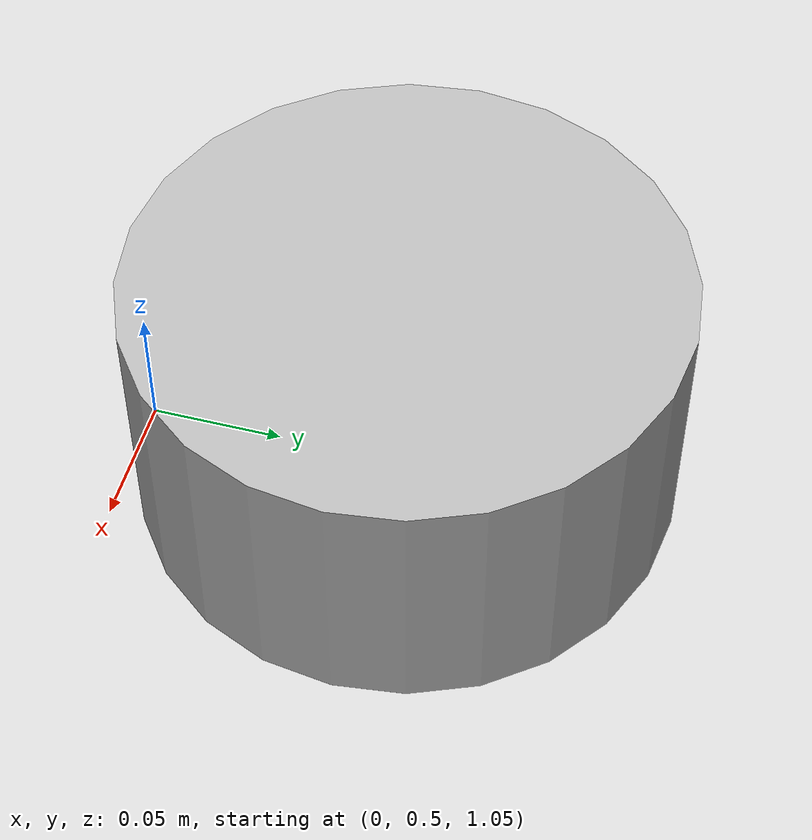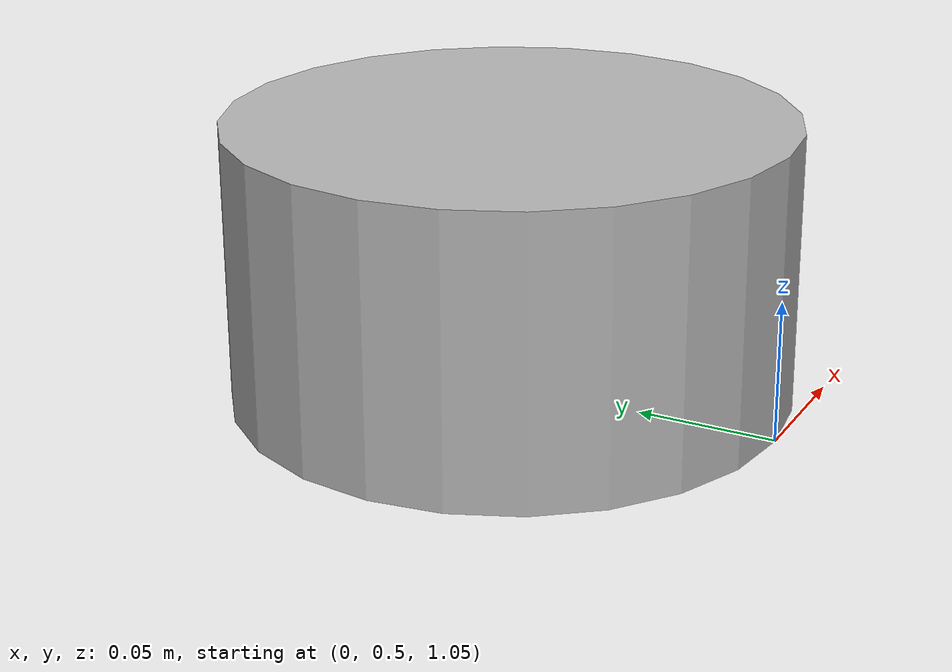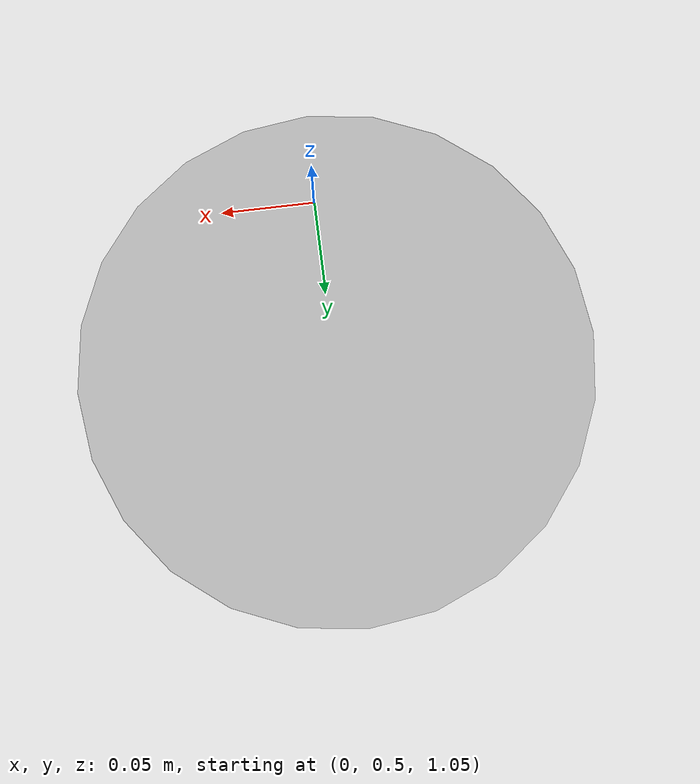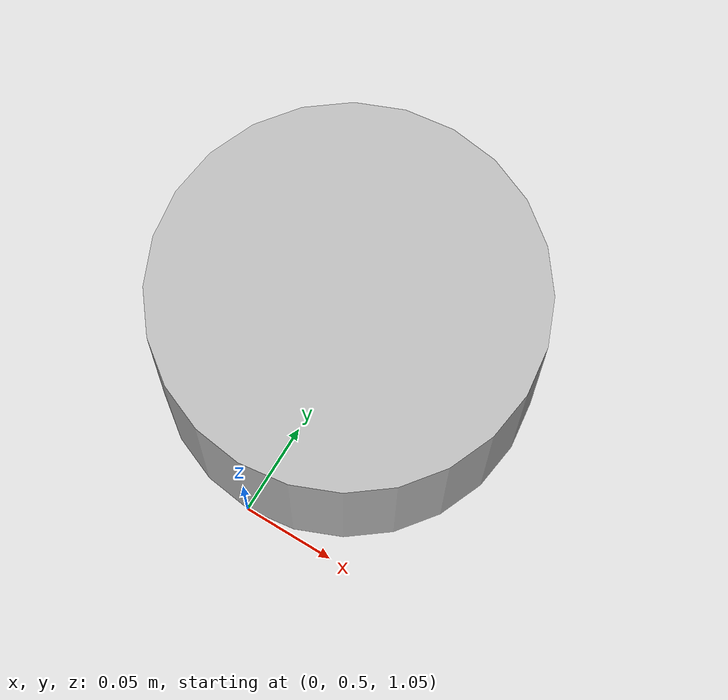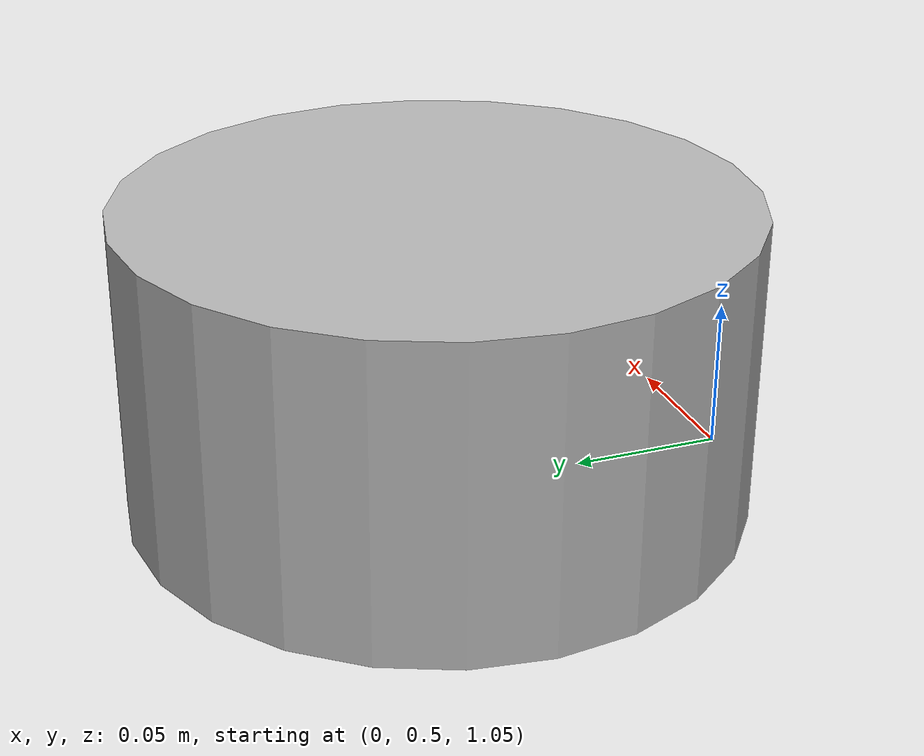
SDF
<?xml version="1.0" ?>
<sdf version="1.10">
  <world name="default">
    <!-- FIXED: Standardized physics for Gazebo Harmonic -->
    <physics name="1ms" type="ignored">
      <max_step_size>0.001</max_step_size>
      <real_time_factor>1.0</real_time_factor>
      <real_time_update_rate>1000</real_time_update_rate>
    </physics>

    <!-- ADDED: Mandatory Gazebo Harmonic system plugins -->
    <plugin filename="gz-sim-physics-system" name="gz::sim::systems::Physics"/>
    <plugin filename="gz-sim-user-commands-system" name="gz::sim::systems::UserCommands"/>
    <plugin filename="gz-sim-scene-broadcaster-system" name="gz::sim::systems::SceneBroadcaster"/>
    <plugin filename="gz-sim-sensors-system" name="gz::sim::systems::Sensors">
      <render_engine>ogre2</render_engine>
    </plugin>

    <scene>
      <ambient>0.5 0.5 0.5 1</ambient>
      <background>0.5 0.5 0.5 1</background>
      <shadows>false</shadows>
    </scene>

    <include>
      <uri>model://sun</uri>
    </include>
    <include>
      <uri>model://ground_plane</uri>
    </include>

    <!-- Gravity -->
    <gravity>0.0 0.0 -10.0</gravity>

    <!-- Spring/damper test model - physics parameters preserved -->
    <model name="spring_test">
      <pose>0.0 0.6 1.1 0 0.0 0.0</pose>
      <link name="link">
        <inertial>
          <inertia>
            <ixx>0.01</ixx>
            <ixy>0.0</ixy>
            <ixz>0.0</ixz>
            <iyy>0.01</iyy>
            <iyz>0.0</iyz>
            <izz>0.01</izz>
          </inertia>
          <mass>1.0</mass>
        </inertial>
        <visual name="visual">
          <geometry>
            <cylinder>
              <length>0.1</length>
              <radius>0.1</radius>
            </cylinder>
          </geometry>
          <material>
            <script>
              <uri>file://media/materials/scripts/gazebo.material</uri>
              <n>Gazebo/Green</n>
            </script>
          </material>
        </visual>
        <collision name="collision">
          <geometry>
            <cylinder>
              <length>0.1</length>
              <radius>0.1</radius>
            </cylinder>
          </geometry>
        </collision>
      </link>

      <joint name="spring_joint" type="prismatic">
        <parent>world</parent>
        <child>link</child>
        <pose>0.0 0.0 0.5 0 0 0</pose>
        <axis>
          <limit>
            <lower>-1.0</lower>
            <upper>1.0</upper>
          </limit>
          <xyz>0.0 0.0 1.0</xyz>
          <dynamics>
            <spring_stiffness>111.1111</spring_stiffness>
            <spring_reference>0.0</spring_reference>
            <damping>0.0</damping>
          </dynamics>
        </axis>
      </joint>
    </model>
  </world>
</sdf>
